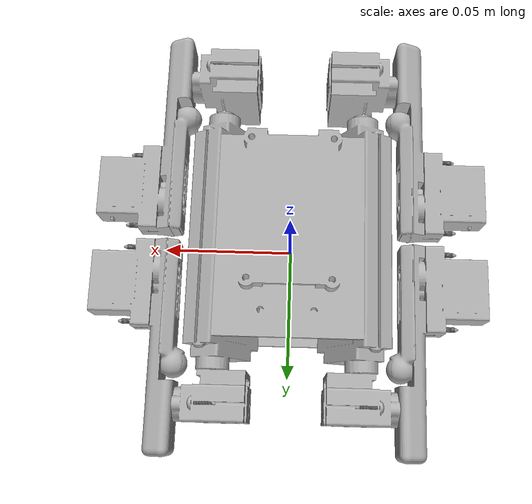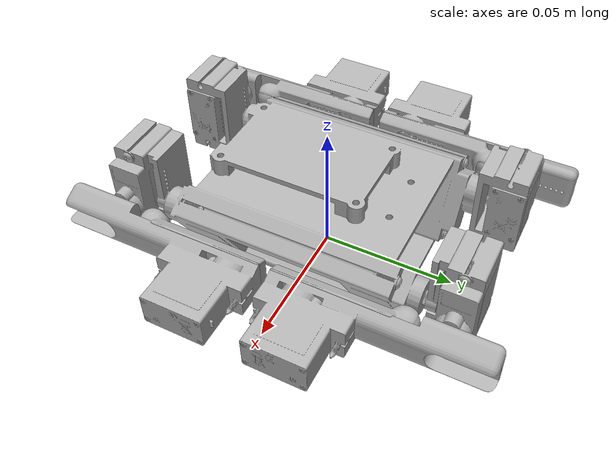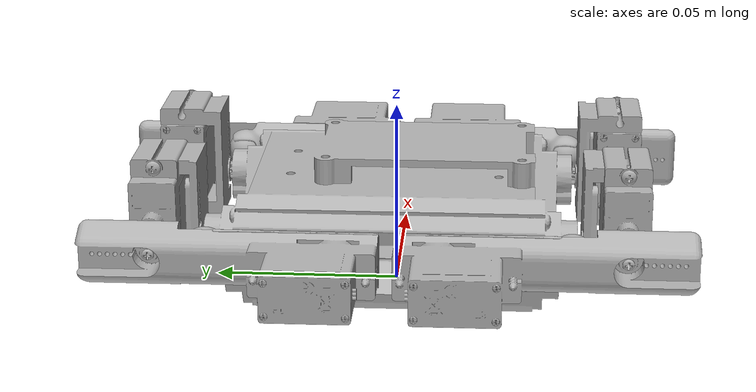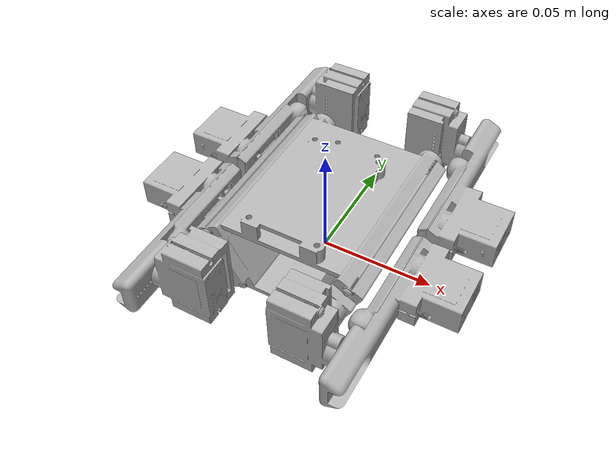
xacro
<?xml version="1.0" ?>
<robot name="assembly_simple" xmlns:xacro="http://www.ros.org/wiki/xacro">

<xacro:include filename="$(find assembly_simple_description)/urdf/materials.xacro" />
<xacro:include filename="$(find assembly_simple_description)/urdf/assembly_simple.trans" />
<xacro:include filename="$(find assembly_simple_description)/urdf/assembly_simple.gazebo" />
<link name="base_link">
  <inertial>
    <origin xyz="-4.01415715045929e-06 -0.0005363751487602584 0.01904486350731033" rpy="0 0 0"/>
    <mass value="0.06711365970673608"/>
    <inertia ixx="6.4e-05" iyy="4.2e-05" izz="8.8e-05" ixy="-0.0" iyz="1e-06" ixz="-0.0"/>
  </inertial>
  <visual>
    <origin xyz="0 0 0" rpy="0 0 0"/>
    <geometry>
      <mesh filename="package://assembly_simple_description/meshes/base_link.stl" scale="0.001 0.001 0.001"/>
    </geometry>
    <material name="silver"/>
  </visual>
  <collision>
    <origin xyz="0 0 0" rpy="0 0 0"/>
    <geometry>
      <mesh filename="package://assembly_simple_description/meshes/base_link.stl" scale="0.001 0.001 0.001"/>
    </geometry>
  </collision>
</link>

<link name="assembly_simplyv3_backup_hip_L_simple_v2_v1_1">
  <inertial>
    <origin xyz="0.0026471348660554762 0.008154605102083302 0.006021408043386009" rpy="0 0 0"/>
    <mass value="0.010651772434958885"/>
    <inertia ixx="1e-06" iyy="1e-06" izz="1e-06" ixy="0.0" iyz="0.0" ixz="-0.0"/>
  </inertial>
  <visual>
    <origin xyz="0.026925 -0.05165 -0.02138" rpy="0 0 0"/>
    <geometry>
      <mesh filename="package://assembly_simple_description/meshes/assembly_simplyv3_backup_hip_L_simple_v2_v1_1.stl" scale="0.001 0.001 0.001"/>
    </geometry>
    <material name="silver"/>
  </visual>
  <collision>
    <origin xyz="0.026925 -0.05165 -0.02138" rpy="0 0 0"/>
    <geometry>
      <mesh filename="package://assembly_simple_description/meshes/assembly_simplyv3_backup_hip_L_simple_v2_v1_1.stl" scale="0.001 0.001 0.001"/>
    </geometry>
  </collision>
</link>

<link name="assembly_simplyv3_backup_hip_L_simple_v2_Mirror__Mirror__v1_1">
  <inertial>
    <origin xyz="-0.0026471348660554762 -0.008154605102083302 0.006021408043386019" rpy="0 0 0"/>
    <mass value="0.010651772434958885"/>
    <inertia ixx="1e-06" iyy="1e-06" izz="1e-06" ixy="0.0" iyz="-0.0" ixz="0.0"/>
  </inertial>
  <visual>
    <origin xyz="-0.026925 0.05165 -0.02138" rpy="0 0 0"/>
    <geometry>
      <mesh filename="package://assembly_simple_description/meshes/assembly_simplyv3_backup_hip_L_simple_v2_Mirror__Mirror__v1_1.stl" scale="0.001 0.001 0.001"/>
    </geometry>
    <material name="silver"/>
  </visual>
  <collision>
    <origin xyz="-0.026925 0.05165 -0.02138" rpy="0 0 0"/>
    <geometry>
      <mesh filename="package://assembly_simple_description/meshes/assembly_simplyv3_backup_hip_L_simple_v2_Mirror__Mirror__v1_1.stl" scale="0.001 0.001 0.001"/>
    </geometry>
  </collision>
</link>

<link name="assembly_simplyv3_backup_hip_L_simple_v2_Mirror__v1_1">
  <inertial>
    <origin xyz="-0.002647134961283666 0.00815460508924732 0.006021408742554624" rpy="0 0 0"/>
    <mass value="0.010651772367412021"/>
    <inertia ixx="1e-06" iyy="1e-06" izz="1e-06" ixy="-0.0" iyz="0.0" ixz="0.0"/>
  </inertial>
  <visual>
    <origin xyz="-0.026925 -0.05165 -0.02138" rpy="0 0 0"/>
    <geometry>
      <mesh filename="package://assembly_simple_description/meshes/assembly_simplyv3_backup_hip_L_simple_v2_Mirror__v1_1.stl" scale="0.001 0.001 0.001"/>
    </geometry>
    <material name="silver"/>
  </visual>
  <collision>
    <origin xyz="-0.026925 -0.05165 -0.02138" rpy="0 0 0"/>
    <geometry>
      <mesh filename="package://assembly_simple_description/meshes/assembly_simplyv3_backup_hip_L_simple_v2_Mirror__v1_1.stl" scale="0.001 0.001 0.001"/>
    </geometry>
  </collision>
</link>

<link name="assembly_simplyv3_backup_hip_L_simple_v2_Mirror___1__v1_1">
  <inertial>
    <origin xyz="0.002647134961283666 -0.008154605089247341 0.006021408742554621" rpy="0 0 0"/>
    <mass value="0.010651772367412021"/>
    <inertia ixx="1e-06" iyy="1e-06" izz="1e-06" ixy="-0.0" iyz="-0.0" ixz="-0.0"/>
  </inertial>
  <visual>
    <origin xyz="0.026925 0.05165 -0.02138" rpy="0 0 0"/>
    <geometry>
      <mesh filename="package://assembly_simple_description/meshes/assembly_simplyv3_backup_hip_L_simple_v2_Mirror___1__v1_1.stl" scale="0.001 0.001 0.001"/>
    </geometry>
    <material name="silver"/>
  </visual>
  <collision>
    <origin xyz="0.026925 0.05165 -0.02138" rpy="0 0 0"/>
    <geometry>
      <mesh filename="package://assembly_simple_description/meshes/assembly_simplyv3_backup_hip_L_simple_v2_Mirror___1__v1_1.stl" scale="0.001 0.001 0.001"/>
    </geometry>
  </collision>
</link>

<link name="assembly_simplyv3_backup_Component6_v1_1">
  <inertial>
    <origin xyz="-0.0140979448138756 -0.031213531473714 8.43387692355535e-05" rpy="0 0 0"/>
    <mass value="0.012949528379146385"/>
    <inertia ixx="6e-06" iyy="1e-06" izz="7e-06" ixy="-1e-06" iyz="0.0" ixz="0.0"/>
  </inertial>
  <visual>
    <origin xyz="0.039485 -0.06105 -0.022478" rpy="0 0 0"/>
    <geometry>
      <mesh filename="package://assembly_simple_description/meshes/assembly_simplyv3_backup_Component6_v1_1.stl" scale="0.001 0.001 0.001"/>
    </geometry>
    <material name="silver"/>
  </visual>
  <collision>
    <origin xyz="0.039485 -0.06105 -0.022478" rpy="0 0 0"/>
    <geometry>
      <mesh filename="package://assembly_simple_description/meshes/assembly_simplyv3_backup_Component6_v1_1.stl" scale="0.001 0.001 0.001"/>
    </geometry>
  </collision>
</link>

<link name="assembly_simplyv3_backup_Component6_Mirror__v1_1">
  <inertial>
    <origin xyz="-0.014097947947670122 0.031213496015972925 8.433709991044133e-05" rpy="0 0 0"/>
    <mass value="0.012949520700092825"/>
    <inertia ixx="6e-06" iyy="1e-06" izz="7e-06" ixy="1e-06" iyz="-0.0" ixz="0.0"/>
  </inertial>
  <visual>
    <origin xyz="0.039485 0.06105 -0.022478" rpy="0 0 0"/>
    <geometry>
      <mesh filename="package://assembly_simple_description/meshes/assembly_simplyv3_backup_Component6_Mirror__v1_1.stl" scale="0.001 0.001 0.001"/>
    </geometry>
    <material name="silver"/>
  </visual>
  <collision>
    <origin xyz="0.039485 0.06105 -0.022478" rpy="0 0 0"/>
    <geometry>
      <mesh filename="package://assembly_simple_description/meshes/assembly_simplyv3_backup_Component6_Mirror__v1_1.stl" scale="0.001 0.001 0.001"/>
    </geometry>
  </collision>
</link>

<link name="assembly_simplyv3_backup_Component6_Mirror__Mirror__v1_1">
  <inertial>
    <origin xyz="0.014097944813875614 0.031213531473714008 8.433876923555697e-05" rpy="0 0 0"/>
    <mass value="0.012949528379146385"/>
    <inertia ixx="6e-06" iyy="1e-06" izz="7e-06" ixy="-1e-06" iyz="-0.0" ixz="-0.0"/>
  </inertial>
  <visual>
    <origin xyz="-0.039585 0.06105 -0.022478" rpy="0 0 0"/>
    <geometry>
      <mesh filename="package://assembly_simple_description/meshes/assembly_simplyv3_backup_Component6_Mirror__Mirror__v1_1.stl" scale="0.001 0.001 0.001"/>
    </geometry>
    <material name="silver"/>
  </visual>
  <collision>
    <origin xyz="-0.039585 0.06105 -0.022478" rpy="0 0 0"/>
    <geometry>
      <mesh filename="package://assembly_simple_description/meshes/assembly_simplyv3_backup_Component6_Mirror__Mirror__v1_1.stl" scale="0.001 0.001 0.001"/>
    </geometry>
  </collision>
</link>

<link name="assembly_simplyv3_backup_Component6_Mirror___1__v1_1">
  <inertial>
    <origin xyz="0.014097947947670164 -0.031213496015972755 8.433709991042052e-05" rpy="0 0 0"/>
    <mass value="0.012949520700092825"/>
    <inertia ixx="6e-06" iyy="1e-06" izz="7e-06" ixy="1e-06" iyz="0.0" ixz="-0.0"/>
  </inertial>
  <visual>
    <origin xyz="-0.039585 -0.06105 -0.022478" rpy="0 0 0"/>
    <geometry>
      <mesh filename="package://assembly_simple_description/meshes/assembly_simplyv3_backup_Component6_Mirror___1__v1_1.stl" scale="0.001 0.001 0.001"/>
    </geometry>
    <material name="silver"/>
  </visual>
  <collision>
    <origin xyz="-0.039585 -0.06105 -0.022478" rpy="0 0 0"/>
    <geometry>
      <mesh filename="package://assembly_simple_description/meshes/assembly_simplyv3_backup_Component6_Mirror___1__v1_1.stl" scale="0.001 0.001 0.001"/>
    </geometry>
  </collision>
</link>

<link name="assembly_simplyv3_backup_lowerleg_left_v2_v1_1">
  <inertial>
    <origin xyz="0.0026345540282930735 0.016520008906610893 0.0005581709036688552" rpy="0 0 0"/>
    <mass value="0.0026700130710144935"/>
    <inertia ixx="1e-06" iyy="0.0" izz="1e-06" ixy="-0.0" iyz="-0.0" ixz="-0.0"/>
  </inertial>
  <visual>
    <origin xyz="0.045235 -0.01295 -0.022628" rpy="0 0 0"/>
    <geometry>
      <mesh filename="package://assembly_simple_description/meshes/assembly_simplyv3_backup_lowerleg_left_v2_v1_1.stl" scale="0.001 0.001 0.001"/>
    </geometry>
    <material name="silver"/>
  </visual>
  <collision>
    <origin xyz="0.045235 -0.01295 -0.022628" rpy="0 0 0"/>
    <geometry>
      <mesh filename="package://assembly_simple_description/meshes/assembly_simplyv3_backup_lowerleg_left_v2_v1_1.stl" scale="0.001 0.001 0.001"/>
    </geometry>
  </collision>
</link>

<link name="assembly_simplyv3_backup_lowerleg_left_v2_Mirror__v1_1">
  <inertial>
    <origin xyz="-0.0026345540282929486 0.016520008906611126 0.0005581709036687962" rpy="0 0 0"/>
    <mass value="0.0026700130710144944"/>
    <inertia ixx="1e-06" iyy="0.0" izz="1e-06" ixy="0.0" iyz="-0.0" ixz="0.0"/>
  </inertial>
  <visual>
    <origin xyz="-0.045335 -0.01295 -0.022628" rpy="0 0 0"/>
    <geometry>
      <mesh filename="package://assembly_simple_description/meshes/assembly_simplyv3_backup_lowerleg_left_v2_Mirror__v1_1.stl" scale="0.001 0.001 0.001"/>
    </geometry>
    <material name="silver"/>
  </visual>
  <collision>
    <origin xyz="-0.045335 -0.01295 -0.022628" rpy="0 0 0"/>
    <geometry>
      <mesh filename="package://assembly_simple_description/meshes/assembly_simplyv3_backup_lowerleg_left_v2_Mirror__v1_1.stl" scale="0.001 0.001 0.001"/>
    </geometry>
  </collision>
</link>

<link name="assembly_simplyv3_backup_lowerleg_left_v2_Mirror___1__v1_1">
  <inertial>
    <origin xyz="0.002634554028293025 -0.016520008906610838 0.0005581709036688275" rpy="0 0 0"/>
    <mass value="0.0026700130710144944"/>
    <inertia ixx="1e-06" iyy="0.0" izz="1e-06" ixy="0.0" iyz="0.0" ixz="-0.0"/>
  </inertial>
  <visual>
    <origin xyz="0.045235 0.01295 -0.022628" rpy="0 0 0"/>
    <geometry>
      <mesh filename="package://assembly_simple_description/meshes/assembly_simplyv3_backup_lowerleg_left_v2_Mirror___1__v1_1.stl" scale="0.001 0.001 0.001"/>
    </geometry>
    <material name="silver"/>
  </visual>
  <collision>
    <origin xyz="0.045235 0.01295 -0.022628" rpy="0 0 0"/>
    <geometry>
      <mesh filename="package://assembly_simple_description/meshes/assembly_simplyv3_backup_lowerleg_left_v2_Mirror___1__v1_1.stl" scale="0.001 0.001 0.001"/>
    </geometry>
  </collision>
</link>

<link name="assembly_simplyv3_backup_lowerleg_left_v2_Mirror__Mirror__v1_1">
  <inertial>
    <origin xyz="-0.0026345540282930457 -0.01652000890661092 0.0005581709036688448" rpy="0 0 0"/>
    <mass value="0.0026700130710144935"/>
    <inertia ixx="1e-06" iyy="0.0" izz="1e-06" ixy="-0.0" iyz="0.0" ixz="0.0"/>
  </inertial>
  <visual>
    <origin xyz="-0.045335 0.01295 -0.022628" rpy="0 0 0"/>
    <geometry>
      <mesh filename="package://assembly_simple_description/meshes/assembly_simplyv3_backup_lowerleg_left_v2_Mirror__Mirror__v1_1.stl" scale="0.001 0.001 0.001"/>
    </geometry>
    <material name="silver"/>
  </visual>
  <collision>
    <origin xyz="-0.045335 0.01295 -0.022628" rpy="0 0 0"/>
    <geometry>
      <mesh filename="package://assembly_simple_description/meshes/assembly_simplyv3_backup_lowerleg_left_v2_Mirror__Mirror__v1_1.stl" scale="0.001 0.001 0.001"/>
    </geometry>
  </collision>
</link>

<joint name="Revolute 1" type="continuous">
  <origin xyz="-0.026925 0.05165 0.02138" rpy="0 0 0"/>
  <parent link="base_link"/>
  <child link="assembly_simplyv3_backup_hip_L_simple_v2_v1_1"/>
  <axis xyz="-0.0 1.0 -0.0"/>
</joint>

<joint name="Revolute 2" type="continuous">
  <origin xyz="0.026925 -0.05165 0.02138" rpy="0 0 0"/>
  <parent link="base_link"/>
  <child link="assembly_simplyv3_backup_hip_L_simple_v2_Mirror__Mirror__v1_1"/>
  <axis xyz="0.0 -1.0 -0.0"/>
</joint>

<joint name="Revolute 3" type="continuous">
  <origin xyz="0.026925 0.05165 0.02138" rpy="0 0 0"/>
  <parent link="base_link"/>
  <child link="assembly_simplyv3_backup_hip_L_simple_v2_Mirror__v1_1"/>
  <axis xyz="-0.0 -1.0 0.0"/>
</joint>

<joint name="Revolute 4" type="continuous">
  <origin xyz="-0.026925 -0.05165 0.02138" rpy="0 0 0"/>
  <parent link="base_link"/>
  <child link="assembly_simplyv3_backup_hip_L_simple_v2_Mirror___1__v1_1"/>
  <axis xyz="0.0 1.0 0.0"/>
</joint>

<joint name="Revolute 5" type="continuous">
  <origin xyz="-0.01256 0.0094 0.001098" rpy="0 0 0"/>
  <parent link="assembly_simplyv3_backup_hip_L_simple_v2_v1_1"/>
  <child link="assembly_simplyv3_backup_Component6_v1_1"/>
  <axis xyz="1.0 -0.0 0.0"/>
</joint>

<joint name="Revolute 6" type="continuous">
  <origin xyz="-0.01256 -0.0094 0.001098" rpy="0 0 0"/>
  <parent link="assembly_simplyv3_backup_hip_L_simple_v2_Mirror___1__v1_1"/>
  <child link="assembly_simplyv3_backup_Component6_Mirror__v1_1"/>
  <axis xyz="-1.0 -0.0 -0.0"/>
</joint>

<joint name="Revolute 7" type="continuous">
  <origin xyz="0.01266 -0.0094 0.001098" rpy="0 0 0"/>
  <parent link="assembly_simplyv3_backup_hip_L_simple_v2_Mirror__Mirror__v1_1"/>
  <child link="assembly_simplyv3_backup_Component6_Mirror__Mirror__v1_1"/>
  <axis xyz="1.0 -0.0 -0.0"/>
</joint>

<joint name="Revolute 8" type="continuous">
  <origin xyz="0.01266 0.0094 0.001098" rpy="0 0 0"/>
  <parent link="assembly_simplyv3_backup_hip_L_simple_v2_Mirror__v1_1"/>
  <child link="assembly_simplyv3_backup_Component6_Mirror___1__v1_1"/>
  <axis xyz="-1.0 -0.0 0.0"/>
</joint>

<joint name="Revolute 9" type="continuous">
  <origin xyz="-0.00575 -0.0481 0.00015" rpy="0 0 0"/>
  <parent link="assembly_simplyv3_backup_Component6_v1_1"/>
  <child link="assembly_simplyv3_backup_lowerleg_left_v2_v1_1"/>
  <axis xyz="1.0 0.0 0.0"/>
</joint>

<joint name="Revolute 10" type="continuous">
  <origin xyz="0.00575 -0.0481 0.00015" rpy="0 0 0"/>
  <parent link="assembly_simplyv3_backup_Component6_Mirror___1__v1_1"/>
  <child link="assembly_simplyv3_backup_lowerleg_left_v2_Mirror__v1_1"/>
  <axis xyz="1.0 -0.0 -0.0"/>
</joint>

<joint name="Revolute 11" type="continuous">
  <origin xyz="-0.00575 0.0481 0.00015" rpy="0 0 0"/>
  <parent link="assembly_simplyv3_backup_Component6_Mirror__v1_1"/>
  <child link="assembly_simplyv3_backup_lowerleg_left_v2_Mirror___1__v1_1"/>
  <axis xyz="-1.0 0.0 -0.0"/>
</joint>

<joint name="Revolute 12" type="continuous">
  <origin xyz="0.00575 0.0481 0.00015" rpy="0 0 0"/>
  <parent link="assembly_simplyv3_backup_Component6_Mirror__Mirror__v1_1"/>
  <child link="assembly_simplyv3_backup_lowerleg_left_v2_Mirror__Mirror__v1_1"/>
  <axis xyz="-1.0 -0.0 0.0"/>
</joint>

</robot>

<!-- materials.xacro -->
<robot name="assembly_simple" xmlns:xacro="http://www.ros.org/wiki/xacro" >

<material name="silver">
  <color rgba="0.700 0.700 0.700 1.000"/>
</material>

</robot>

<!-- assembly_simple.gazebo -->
<robot name="assembly_simple" xmlns:xacro="http://www.ros.org/wiki/xacro" >

<xacro:property name="body_color" value="Gazebo/Silver" />

<gazebo>
  <plugin name="control" filename="libgazebo_ros_control.so"/>
</gazebo>
<gazebo reference="base_link">
  <material>${body_color}</material>
  <mu1>0.2</mu1>
  <mu2>0.2</mu2>
  <selfCollide>true</selfCollide>
  <gravity>true</gravity>
</gazebo>

<gazebo reference="assembly_simplyv3_backup_hip_L_simple_v2_v1_1">
  <material>${body_color}</material>
  <mu1>0.2</mu1>
  <mu2>0.2</mu2>
  <selfCollide>true</selfCollide>
</gazebo>

<gazebo reference="assembly_simplyv3_backup_hip_L_simple_v2_Mirror__Mirror__v1_1">
  <material>${body_color}</material>
  <mu1>0.2</mu1>
  <mu2>0.2</mu2>
  <selfCollide>true</selfCollide>
</gazebo>

<gazebo reference="assembly_simplyv3_backup_hip_L_simple_v2_Mirror__v1_1">
  <material>${body_color}</material>
  <mu1>0.2</mu1>
  <mu2>0.2</mu2>
  <selfCollide>true</selfCollide>
</gazebo>

<gazebo reference="assembly_simplyv3_backup_hip_L_simple_v2_Mirror___1__v1_1">
  <material>${body_color}</material>
  <mu1>0.2</mu1>
  <mu2>0.2</mu2>
  <selfCollide>true</selfCollide>
</gazebo>

<gazebo reference="assembly_simplyv3_backup_Component6_v1_1">
  <material>${body_color}</material>
  <mu1>0.2</mu1>
  <mu2>0.2</mu2>
  <selfCollide>true</selfCollide>
</gazebo>

<gazebo reference="assembly_simplyv3_backup_Component6_Mirror__v1_1">
  <material>${body_color}</material>
  <mu1>0.2</mu1>
  <mu2>0.2</mu2>
  <selfCollide>true</selfCollide>
</gazebo>

<gazebo reference="assembly_simplyv3_backup_Component6_Mirror__Mirror__v1_1">
  <material>${body_color}</material>
  <mu1>0.2</mu1>
  <mu2>0.2</mu2>
  <selfCollide>true</selfCollide>
</gazebo>

<gazebo reference="assembly_simplyv3_backup_Component6_Mirror___1__v1_1">
  <material>${body_color}</material>
  <mu1>0.2</mu1>
  <mu2>0.2</mu2>
  <selfCollide>true</selfCollide>
</gazebo>

<gazebo reference="assembly_simplyv3_backup_lowerleg_left_v2_v1_1">
  <material>${body_color}</material>
  <mu1>0.2</mu1>
  <mu2>0.2</mu2>
  <selfCollide>true</selfCollide>
</gazebo>

<gazebo reference="assembly_simplyv3_backup_lowerleg_left_v2_Mirror__v1_1">
  <material>${body_color}</material>
  <mu1>0.2</mu1>
  <mu2>0.2</mu2>
  <selfCollide>true</selfCollide>
</gazebo>

<gazebo reference="assembly_simplyv3_backup_lowerleg_left_v2_Mirror___1__v1_1">
  <material>${body_color}</material>
  <mu1>0.2</mu1>
  <mu2>0.2</mu2>
  <selfCollide>true</selfCollide>
</gazebo>

<gazebo reference="assembly_simplyv3_backup_lowerleg_left_v2_Mirror__Mirror__v1_1">
  <material>${body_color}</material>
  <mu1>0.2</mu1>
  <mu2>0.2</mu2>
  <selfCollide>true</selfCollide>
</gazebo>

</robot>
